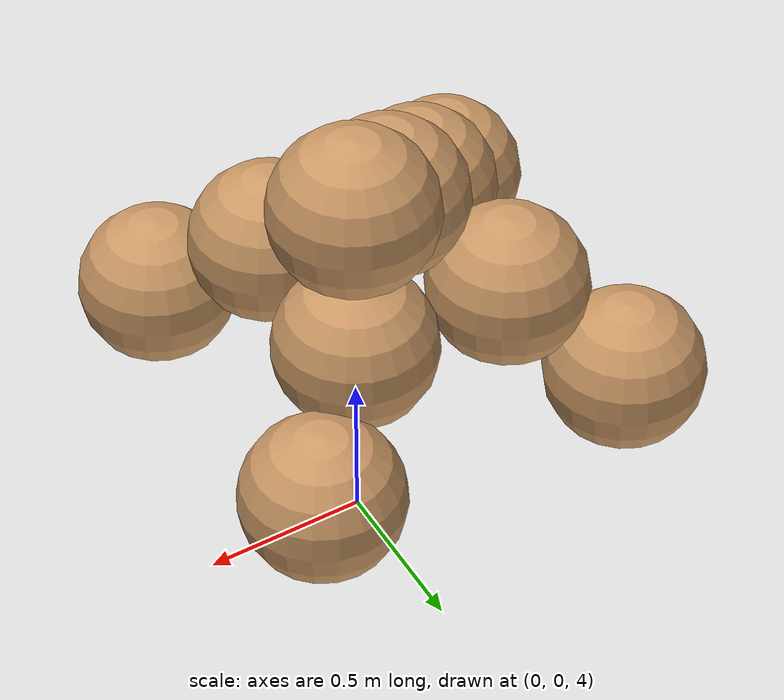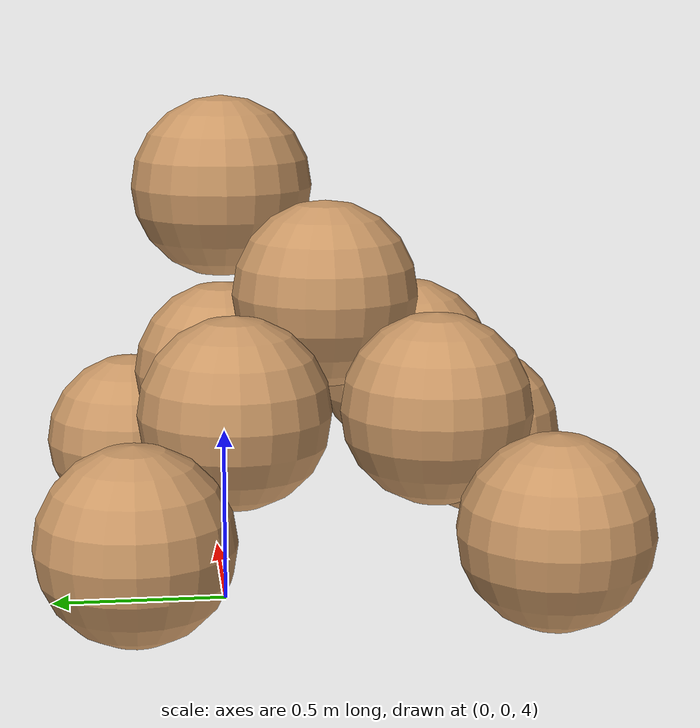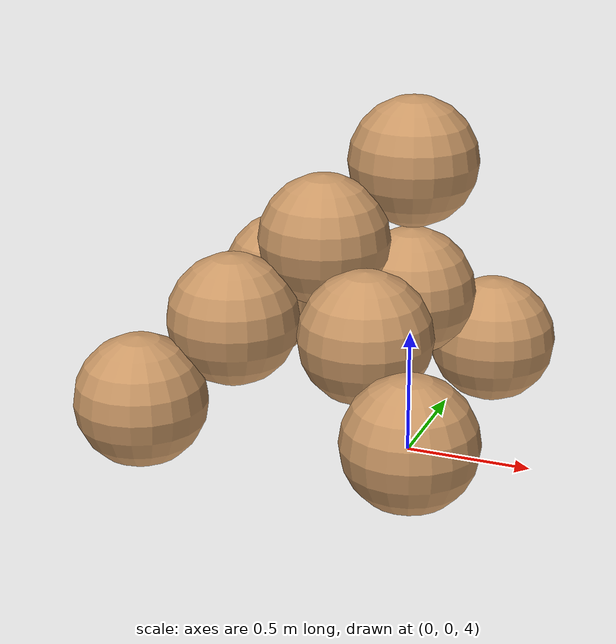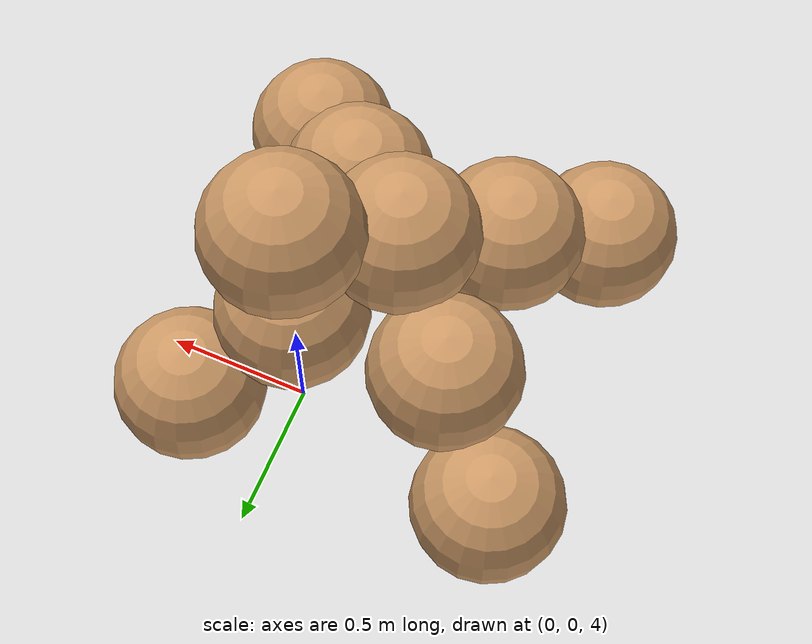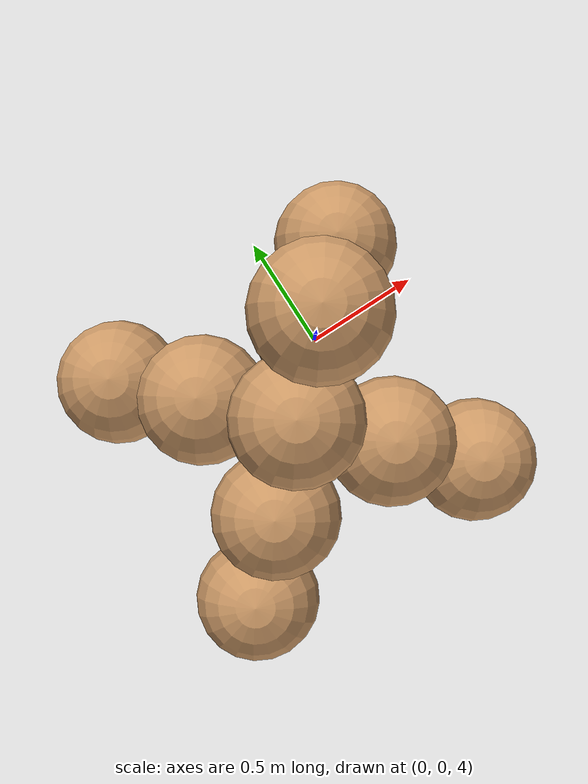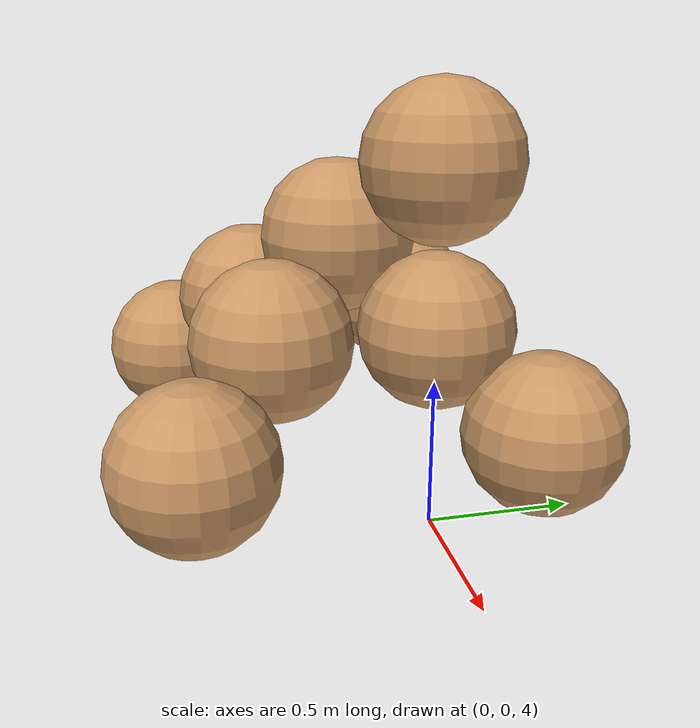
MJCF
<mujoco model="CR_quadruped_v1_A001">
  <compiler angle="degree" coordinate="local" inertiafromgeom="true"/>
  <option integrator="RK4" timestep="0.005" />

  <default>
    <joint armature="1" damping="1" limited="true"/>
     <geom conaffinity="0" condim="1" density="5" friction="1 0.5 0.5" margin="0.01" rgba="0.8 0.6 0.4 1"/>
  </default>

  <asset>
    <texture builtin="gradient" height="100" rgb1="1 1 1" rgb2="0 0 0" type="skybox" width="100"/>
    <texture builtin="flat" height="1278" mark="cross" markrgb="1 1 1" name="texgeom" random="0.01" rgb1="0.8 0.6 0.4" rgb2="0.8 0.6 0.4" type="cube" width="127"/>
    <texture builtin="checker" height="100" name="texplane" rgb1="0 0 0" rgb2="0.8 0.8 0.8" type="2d" width="100"/>
    <material name="MatPlane" reflectance="0.5" shininess="1" specular="1" texrepeat="60 60" texture="texplane"/>
    <material name="geom" texture="texgeom" texuniform="true"/>
  </asset>

  <worldbody>
    <light cutoff="100" diffuse="1 1 1" dir="-0 0 -1.3" directional="true" exponent="1" pos="0 0 1.3" specular=".1 .1 .1"/>
    <geom conaffinity="1" condim="3" material="MatPlane" name="floor" pos="0 0 0" rgba="0.8 0.9 0.8 1" size="40 40 40" type="plane"/>
          <!--  ================= CELLROBOT ================= /-->
    <body name="torso" pos="0 0 5.2">
      <geom name="Heart" pos="0 0 0" size="0.25" type="sphere" />
      <joint armature="0" damping="0" limited="false" margin="0.01" name="root" pos="0 0 0" type="free"/>
      <body name="head" pos="-0.26 -0.26 -0.26">
        <geom name="headL" pos="0 0 0" size="0.25" type="sphere"/>
        <body name="front_left_leg" pos="0.26 0.26 -0.26">
          <geom name="cell_1L" pos="0 0 0" size="0.25" type="sphere"/>
          <body name="cell1" pos="0 0 0">
            <geom name="cell_1R" pos="0 0 0" size="0.25" type="sphere"/>
            <joint axis="1 0 0" name="r1" pos="0 0 0"  range="-30 30" type="hinge"/>
            <body name="cell5" pos="0.26 0.26 -0.26">
              <geom name="cell5" pos="0 0 0" size="0.25" type="sphere"/>
            </body>
          </body>
      </body>
        <body name="front_right_leg" pos="0.26 -0.26 -0.26">
          <geom name="cell_2L" pos="0 0 0" size="0.25" type="sphere"/>
          <body name="cell2" pos="0 0 0">
            <geom name="cell_2R" pos="0 0 0" size="0.25" type="sphere"/>
            <joint axis="1 0 0" name="r2" pos="0 0 0"  range="-30 30" type="hinge"/>
            <body name="cell6" pos="0.26 -0.26 -0.26">
              <geom name="cell6" pos="0 0 0" size="0.25" type="sphere"/>
            </body>
          </body>
      </body>
        <body name="headR" pos="0 0 0">
          <geom name="headR" pos="0 0 0" size="0.25" type="sphere"/>
          <joint axis="1 0 0" name="r0" pos="0 0 0"  range="-30 30" type="hinge"/>
          <body name="back_right_leg" pos="-0.26 -0.26 -0.26">
            <geom name="cell_3L" pos="0 0 0" size="0.25" type="sphere"/>
            <body name="cell3" pos="0 0 0">
              <geom name="cell_3R" pos="0 0 0" size="0.25" type="sphere"/>
              <joint axis="1 0 0" name="r3" pos="0 0 0"  range="-30 30" type="hinge"/>
              <body name="cell7" pos="-0.26 -0.26 -0.26">
                <geom name="cell7" pos="0 0 0" size="0.25" type="sphere"/>
              </body>
          </body>
      </body>
          <body name="back_left_leg" pos="-0.26 0.26 -0.26">
            <geom name="cell_4L" pos="0 0 0" size="0.25" type="sphere"/>
            <body name="cell4" pos="0 0 0">
              <geom name="cell_4R" pos="0 0 0" size="0.25" type="sphere"/>
              <joint axis="1 0 0" name="r4" pos="0 0 0"  range="-30 30" type="hinge"/>
              <body name="cell8" pos="-0.26 0.26 -0.26">
                <geom name="cell8" pos="0 0 0" size="0.25" type="sphere"/>
              </body>
          </body>

      </body>
        </body>
      </body>
    </body>

  </worldbody>
  <actuator>
    <motor ctrllimited="true" ctrlrange="-1.0 1.0" joint="r0" gear="150"/>
    <motor ctrllimited="true" ctrlrange="-1.0 1.0" joint="r1" gear="150"/>
    <motor ctrllimited="true" ctrlrange="-1.0 1.0" joint="r2" gear="150"/>
    <motor ctrllimited="true" ctrlrange="-1.0 1.0" joint="r3" gear="150"/>
    <motor ctrllimited="true" ctrlrange="-1.0 1.0" joint="r4" gear="150"/>
  </actuator>

</mujoco>
